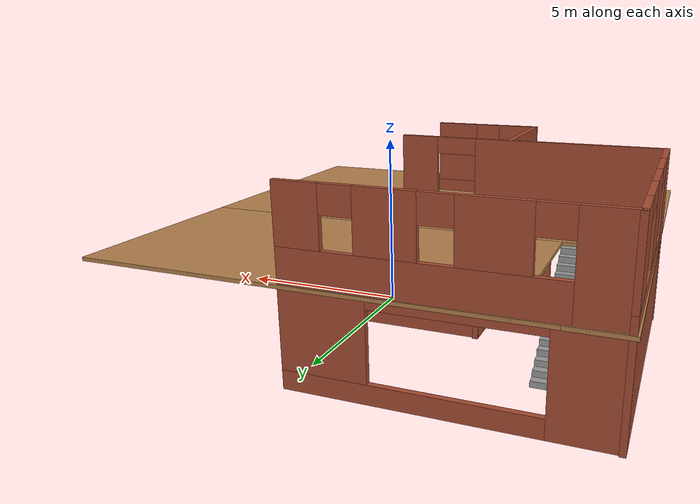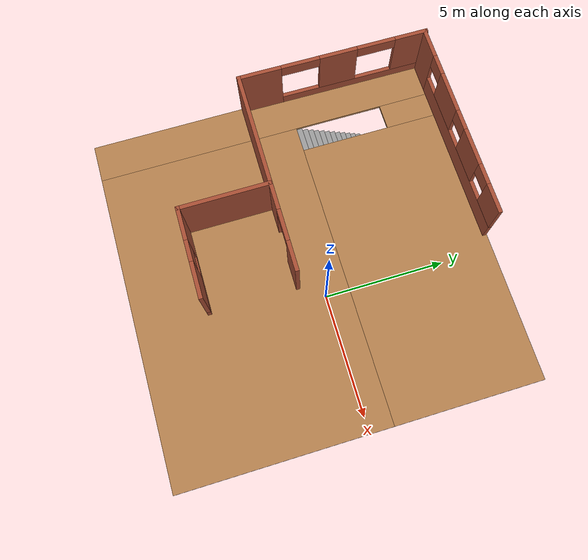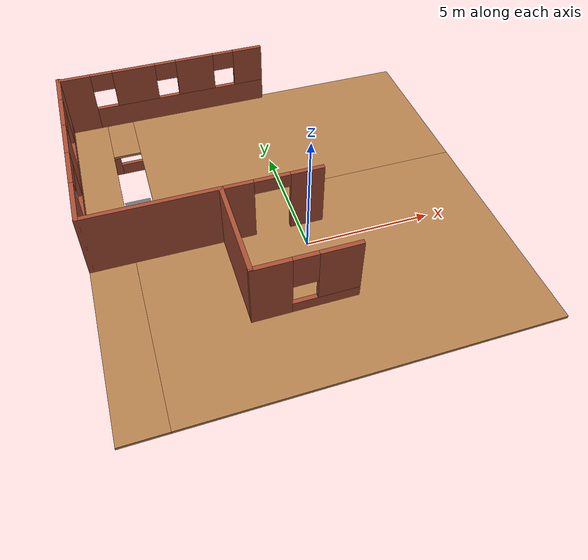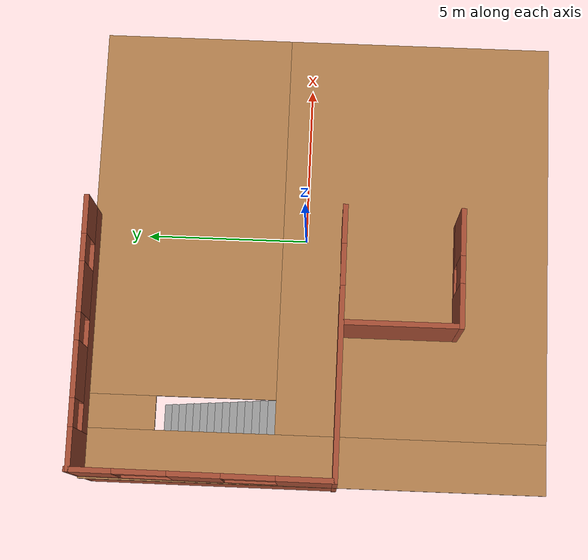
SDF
<sdf version="1.6">
 <model name="HouseTwoLevels">
  <pose>-1.03567 -0.470569 0 0 -0 0</pose>
  <link name="Floor_0">
   <pose>0 8.2e-05 2.5 0 -0 0</pose>
   <visual name="Floor_0_Visual_0">
    <pose>-6.0357 0 0.05 0 -0 0</pose>
    <geometry><box><size>1.47202 13.5434 0.1</size></box></geometry>
    <material>
     <script><uri>file://media/materials/scripts/gazebo.material</uri><name>Gazebo/Wood</name></script>
     <ambient>1 1 1 1</ambient>
    </material>
   </visual>
   <collision name="Floor_0_Collision_0">
    <geometry><box><size>1.47202 13.5434 0.1</size></box></geometry>
    <pose>-6.0357 0 0.05 0 -0 0</pose>
   </collision>
   <visual name="Floor_0_Visual_1">
    <pose>0.736013 -2.82095 0.05 0 -0 0</pose>
    <geometry><box><size>12.0714 7.90153 0.1</size></box></geometry>
    <material>
     <script><uri>file://media/materials/scripts/gazebo.material</uri><name>Gazebo/Wood</name></script>
     <ambient>1 1 1 1</ambient>
    </material>
   </visual>
   <collision name="Floor_0_Collision_1">
    <geometry><box><size>12.0714 7.90153 0.1</size></box></geometry>
    <pose>0.736013 -2.82095 0.05 0 -0 0</pose>
   </collision>
   <visual name="Floor_0_Visual_2">
    <pose>1.23601 3.95076 0.05 0 -0 0</pose>
    <geometry><box><size>11.0714 5.6419 0.1</size></box></geometry>
    <material>
     <script><uri>file://media/materials/scripts/gazebo.material</uri><name>Gazebo/Wood</name></script>
     <ambient>1 1 1 1</ambient>
    </material>
   </visual>
   <collision name="Floor_0_Collision_2">
    <geometry><box><size>11.0714 5.6419 0.1</size></box></geometry>
    <pose>1.23601 3.95076 0.05 0 -0 0</pose>
   </collision>
   <visual name="Floor_0_Visual_3">
    <pose>-4.79969 5.70076 0.05 0 -0 0</pose>
    <geometry><box><size>1 2.1419 0.1</size></box></geometry>
    <material>
     <script><uri>file://media/materials/scripts/gazebo.material</uri><name>Gazebo/Wood</name></script>
     <ambient>1 1 1 1</ambient>
    </material>
   </visual>
   <collision name="Floor_0_Collision_3">
    <geometry><box><size>1 2.1419 0.1</size></box></geometry>
    <pose>-4.79969 5.70076 0.05 0 -0 0</pose>
   </collision>
  </link>
  <link name="Stairs_0">
   <visual name="Stairs_0_Visual_0">
    <pose>-4.79969 4.51323 0.083333 0 -0 0</pose>
    <geometry><box><size>1 0.233333 0.166667</size></box></geometry>
    <material>
     <script><uri>file://media/materials/scripts/gazebo.material</uri><name>Gazebo/Grey</name></script>
     <ambient>1 1 1 1</ambient>
    </material>
   </visual>
   <collision name="Stairs_0_Collision_0">
    <geometry><box><size>1 0.233333 0.166667</size></box></geometry>
    <pose>-4.79969 4.51323 0.083333 0 -0 0</pose>
   </collision>
   <visual name="Stairs_0_Visual_1">
    <pose>-4.79969 4.2799 0.25 0 -0 0</pose>
    <geometry><box><size>1 0.233333 0.166667</size></box></geometry>
    <material>
     <script><uri>file://media/materials/scripts/gazebo.material</uri><name>Gazebo/Grey</name></script>
     <ambient>1 1 1 1</ambient>
    </material>
   </visual>
   <collision name="Stairs_0_Collision_1">
    <geometry><box><size>1 0.233333 0.166667</size></box></geometry>
    <pose>-4.79969 4.2799 0.25 0 -0 0</pose>
   </collision>
   <visual name="Stairs_0_Visual_2">
    <pose>-4.79969 4.04656 0.416667 0 -0 0</pose>
    <geometry><box><size>1 0.233333 0.166667</size></box></geometry>
    <material>
     <script><uri>file://media/materials/scripts/gazebo.material</uri><name>Gazebo/Grey</name></script>
     <ambient>1 1 1 1</ambient>
    </material>
   </visual>
   <collision name="Stairs_0_Collision_2">
    <geometry><box><size>1 0.233333 0.166667</size></box></geometry>
    <pose>-4.79969 4.04656 0.416667 0 -0 0</pose>
   </collision>
   <visual name="Stairs_0_Visual_3">
    <pose>-4.79969 3.81323 0.583333 0 -0 0</pose>
    <geometry><box><size>1 0.233333 0.166667</size></box></geometry>
    <material>
     <script><uri>file://media/materials/scripts/gazebo.material</uri><name>Gazebo/Grey</name></script>
     <ambient>1 1 1 1</ambient>
    </material>
   </visual>
   <collision name="Stairs_0_Collision_3">
    <geometry><box><size>1 0.233333 0.166667</size></box></geometry>
    <pose>-4.79969 3.81323 0.583333 0 -0 0</pose>
   </collision>
   <visual name="Stairs_0_Visual_4">
    <pose>-4.79969 3.5799 0.75 0 -0 0</pose>
    <geometry><box><size>1 0.233333 0.166667</size></box></geometry>
    <material>
     <script><uri>file://media/materials/scripts/gazebo.material</uri><name>Gazebo/Grey</name></script>
     <ambient>1 1 1 1</ambient>
    </material>
   </visual>
   <collision name="Stairs_0_Collision_4">
    <geometry><box><size>1 0.233333 0.166667</size></box></geometry>
    <pose>-4.79969 3.5799 0.75 0 -0 0</pose>
   </collision>
   <visual name="Stairs_0_Visual_5">
    <pose>-4.79969 3.34656 0.916667 0 -0 0</pose>
    <geometry><box><size>1 0.233333 0.166667</size></box></geometry>
    <material>
     <script><uri>file://media/materials/scripts/gazebo.material</uri><name>Gazebo/Grey</name></script>
     <ambient>1 1 1 1</ambient>
    </material>
   </visual>
   <collision name="Stairs_0_Collision_5">
    <geometry><box><size>1 0.233333 0.166667</size></box></geometry>
    <pose>-4.79969 3.34656 0.916667 0 -0 0</pose>
   </collision>
   <visual name="Stairs_0_Visual_6">
    <pose>-4.79969 3.11323 1.08333 0 -0 0</pose>
    <geometry><box><size>1 0.233333 0.166667</size></box></geometry>
    <material>
     <script><uri>file://media/materials/scripts/gazebo.material</uri><name>Gazebo/Grey</name></script>
     <ambient>1 1 1 1</ambient>
    </material>
   </visual>
   <collision name="Stairs_0_Collision_6">
    <geometry><box><size>1 0.233333 0.166667</size></box></geometry>
    <pose>-4.79969 3.11323 1.08333 0 -0 0</pose>
   </collision>
   <visual name="Stairs_0_Visual_7">
    <pose>-4.79969 2.87989 1.25 0 -0 0</pose>
    <geometry><box><size>1 0.233333 0.166667</size></box></geometry>
    <material>
     <script><uri>file://media/materials/scripts/gazebo.material</uri><name>Gazebo/Grey</name></script>
     <ambient>1 1 1 1</ambient>
    </material>
   </visual>
   <collision name="Stairs_0_Collision_7">
    <geometry><box><size>1 0.233333 0.166667</size></box></geometry>
    <pose>-4.79969 2.87989 1.25 0 -0 0</pose>
   </collision>
   <visual name="Stairs_0_Visual_8">
    <pose>-4.79969 2.64656 1.41667 0 -0 0</pose>
    <geometry><box><size>1 0.233333 0.166667</size></box></geometry>
    <material>
     <script><uri>file://media/materials/scripts/gazebo.material</uri><name>Gazebo/Grey</name></script>
     <ambient>1 1 1 1</ambient>
    </material>
   </visual>
   <collision name="Stairs_0_Collision_8">
    <geometry><box><size>1 0.233333 0.166667</size></box></geometry>
    <pose>-4.79969 2.64656 1.41667 0 -0 0</pose>
   </collision>
   <visual name="Stairs_0_Visual_9">
    <pose>-4.79969 2.41323 1.58333 0 -0 0</pose>
    <geometry><box><size>1 0.233333 0.166667</size></box></geometry>
    <material>
     <script><uri>file://media/materials/scripts/gazebo.material</uri><name>Gazebo/Grey</name></script>
     <ambient>1 1 1 1</ambient>
    </material>
   </visual>
   <collision name="Stairs_0_Collision_9">
    <geometry><box><size>1 0.233333 0.166667</size></box></geometry>
    <pose>-4.79969 2.41323 1.58333 0 -0 0</pose>
   </collision>
   <visual name="Stairs_0_Visual_10">
    <pose>-4.79969 2.1799 1.75 0 -0 0</pose>
    <geometry><box><size>1 0.233333 0.166667</size></box></geometry>
    <material>
     <script><uri>file://media/materials/scripts/gazebo.material</uri><name>Gazebo/Grey</name></script>
     <ambient>1 1 1 1</ambient>
    </material>
   </visual>
   <collision name="Stairs_0_Collision_10">
    <geometry><box><size>1 0.233333 0.166667</size></box></geometry>
    <pose>-4.79969 2.1799 1.75 0 -0 0</pose>
   </collision>
   <visual name="Stairs_0_Visual_11">
    <pose>-4.79969 1.94656 1.91667 0 -0 0</pose>
    <geometry><box><size>1 0.233333 0.166667</size></box></geometry>
    <material>
     <script><uri>file://media/materials/scripts/gazebo.material</uri><name>Gazebo/Grey</name></script>
     <ambient>1 1 1 1</ambient>
    </material>
   </visual>
   <collision name="Stairs_0_Collision_11">
    <geometry><box><size>1 0.233333 0.166667</size></box></geometry>
    <pose>-4.79969 1.94656 1.91667 0 -0 0</pose>
   </collision>
   <visual name="Stairs_0_Visual_12">
    <pose>-4.79969 1.71323 2.08333 0 -0 0</pose>
    <geometry><box><size>1 0.233333 0.166667</size></box></geometry>
    <material>
     <script><uri>file://media/materials/scripts/gazebo.material</uri><name>Gazebo/Grey</name></script>
     <ambient>1 1 1 1</ambient>
    </material>
   </visual>
   <collision name="Stairs_0_Collision_12">
    <geometry><box><size>1 0.233333 0.166667</size></box></geometry>
    <pose>-4.79969 1.71323 2.08333 0 -0 0</pose>
   </collision>
   <visual name="Stairs_0_Visual_13">
    <pose>-4.79969 1.47989 2.25 0 -0 0</pose>
    <geometry><box><size>1 0.233333 0.166667</size></box></geometry>
    <material>
     <script><uri>file://media/materials/scripts/gazebo.material</uri><name>Gazebo/Grey</name></script>
     <ambient>1 1 1 1</ambient>
    </material>
   </visual>
   <collision name="Stairs_0_Collision_13">
    <geometry><box><size>1 0.233333 0.166667</size></box></geometry>
    <pose>-4.79969 1.47989 2.25 0 -0 0</pose>
   </collision>
   <visual name="Stairs_0_Visual_14">
    <pose>-4.79969 1.24656 2.41667 0 -0 0</pose>
    <geometry><box><size>1 0.233333 0.166667</size></box></geometry>
    <material>
     <script><uri>file://media/materials/scripts/gazebo.material</uri><name>Gazebo/Grey</name></script>
     <ambient>1 1 1 1</ambient>
    </material>
   </visual>
   <collision name="Stairs_0_Collision_14">
    <geometry><box><size>1 0.233333 0.166667</size></box></geometry>
    <pose>-4.79969 1.24656 2.41667 0 -0 0</pose>
   </collision>
  </link>
  <link name="Wall_1">
   <pose>-2.82202 6.66175 0 0 -0 0.003021</pose>
   <visual name="Wall_1_Visual_0">
    <pose>-3.08451 0 1.25 0 -0 0</pose>
    <geometry><box><size>1.63724 0.15 2.5</size></box></geometry>
    <material>
     <script><uri>file://media/materials/scripts/gazebo.material</uri><name>Gazebo/Bricks</name></script>
     <ambient>1 1 1 1</ambient>
    </material>
   </visual>
   <collision name="Wall_1_Collision_0">
    <geometry><box><size>1.63724 0.15 2.5</size></box></geometry>
    <pose>-3.08451 0 1.25 0 -0 0</pose>
   </collision>
   <visual name="Wall_1_Visual_1">
    <pose>0.818619 0 0.25 0 -0 0</pose>
    <geometry><box><size>6.16903 0.15 0.5</size></box></geometry>
    <material>
     <script><uri>file://media/materials/scripts/gazebo.material</uri><name>Gazebo/Bricks</name></script>
     <ambient>1 1 1 1</ambient>
    </material>
   </visual>
   <collision name="Wall_1_Collision_1">
    <geometry><box><size>6.16903 0.15 0.5</size></box></geometry>
    <pose>0.818619 0 0.25 0 -0 0</pose>
   </collision>
   <visual name="Wall_1_Visual_2">
    <pose>2.81862 0 1.5 0 -0 0</pose>
    <geometry><box><size>2.16903 0.15 2</size></box></geometry>
    <material>
     <script><uri>file://media/materials/scripts/gazebo.material</uri><name>Gazebo/Bricks</name></script>
     <ambient>1 1 1 1</ambient>
    </material>
   </visual>
   <collision name="Wall_1_Collision_2">
    <geometry><box><size>2.16903 0.15 2</size></box></geometry>
    <pose>2.81862 0 1.5 0 -0 0</pose>
   </collision>
   <visual name="Wall_1_Visual_3">
    <pose>-0.265896 0 2.4 0 -0 0</pose>
    <geometry><box><size>4 0.15 0.2</size></box></geometry>
    <material>
     <script><uri>file://media/materials/scripts/gazebo.material</uri><name>Gazebo/Bricks</name></script>
     <ambient>1 1 1 1</ambient>
    </material>
   </visual>
   <collision name="Wall_1_Collision_3">
    <geometry><box><size>4 0.15 0.2</size></box></geometry>
    <pose>-0.265896 0 2.4 0 -0 0</pose>
   </collision>
  </link>
  <link name="Wall_13">
   <pose>-2.31315 0.867533 0 0 -0 1.56333</pose>
   <visual name="Wall_13_Visual_0">
    <pose>-1.17001 0 1.25 0 -0 0</pose>
    <geometry><box><size>0.909576 0.15 2.5</size></box></geometry>
    <material>
     <script><uri>file://media/materials/scripts/gazebo.material</uri><name>Gazebo/Bricks</name></script>
     <ambient>1 1 1 1</ambient>
    </material>
   </visual>
   <collision name="Wall_13_Collision_0">
    <geometry><box><size>0.909576 0.15 2.5</size></box></geometry>
    <pose>-1.17001 0 1.25 0 -0 0</pose>
   </collision>
   <visual name="Wall_13_Visual_1">
    <pose>1.05479 0 1.25 0 -0 0</pose>
    <geometry><box><size>1.14001 0.15 2.5</size></box></geometry>
    <material>
     <script><uri>file://media/materials/scripts/gazebo.material</uri><name>Gazebo/Bricks</name></script>
     <ambient>1 1 1 1</ambient>
    </material>
   </visual>
   <collision name="Wall_13_Collision_1">
    <geometry><box><size>1.14001 0.15 2.5</size></box></geometry>
    <pose>1.05479 0 1.25 0 -0 0</pose>
   </collision>
   <visual name="Wall_13_Visual_2">
    <pose>-0.115218 0 2.25 0 -0 0</pose>
    <geometry><box><size>1.2 0.15 0.5</size></box></geometry>
    <material>
     <script><uri>file://media/materials/scripts/gazebo.material</uri><name>Gazebo/Bricks</name></script>
     <ambient>1 1 1 1</ambient>
    </material>
   </visual>
   <collision name="Wall_13_Collision_2">
    <geometry><box><size>1.2 0.15 0.5</size></box></geometry>
    <pose>-0.115218 0 2.25 0 -0 0</pose>
   </collision>
  </link>
  <link name="Wall_15">
   <collision name="Wall_15_Collision">
    <geometry><box><size>3.45768 0.15 2.5</size></box></geometry>
    <pose>0 0 1.25 0 -0 0</pose>
   </collision>
   <visual name="Wall_15_Visual">
    <pose>0 0 1.25 0 -0 0</pose>
    <geometry><box><size>3.45768 0.15 2.5</size></box></geometry>
    <material>
     <script><uri>file://media/materials/scripts/gazebo.material</uri><name>Gazebo/Bricks</name></script>
     <ambient>1 1 1 1</ambient>
    </material>
   </visual>
   <pose>-0.647741 2.34789 0 0 -0 0</pose>
  </link>
  <link name="Wall_17">
   <collision name="Wall_17_Collision">
    <geometry><box><size>3.48113 0.15 2.5</size></box></geometry>
    <pose>0 0 1.25 0 -0 0</pose>
   </collision>
   <visual name="Wall_17_Visual">
    <pose>0 0 1.25 0 -0 0</pose>
    <geometry><box><size>3.48113 0.15 2.5</size></box></geometry>
    <material>
     <script><uri>file://media/materials/scripts/gazebo.material</uri><name>Gazebo/Bricks</name></script>
     <ambient>1 1 1 1</ambient>
    </material>
   </visual>
   <pose>-2.30158 -2.37075 0 0 0 -1.5708</pose>
  </link>
  <link name="Wall_18">
   <pose>-0.647741 -4.03616 0 0 -0 0</pose>
   <visual name="Wall_18_Visual_0">
    <pose>-1.33772 0 1.25 0 -0 0</pose>
    <geometry><box><size>0.782228 0.15 2.5</size></box></geometry>
    <material>
     <script><uri>file://media/materials/scripts/gazebo.material</uri><name>Gazebo/Bricks</name></script>
     <ambient>1 1 1 1</ambient>
    </material>
   </visual>
   <collision name="Wall_18_Collision_0">
    <geometry><box><size>0.782228 0.15 2.5</size></box></geometry>
    <pose>-1.33772 0 1.25 0 -0 0</pose>
   </collision>
   <visual name="Wall_18_Visual_1">
    <pose>1.14111 0 1.25 0 -0 0</pose>
    <geometry><box><size>1.17545 0.15 2.5</size></box></geometry>
    <material>
     <script><uri>file://media/materials/scripts/gazebo.material</uri><name>Gazebo/Bricks</name></script>
     <ambient>1 1 1 1</ambient>
    </material>
   </visual>
   <collision name="Wall_18_Collision_1">
    <geometry><box><size>1.17545 0.15 2.5</size></box></geometry>
    <pose>1.14111 0 1.25 0 -0 0</pose>
   </collision>
   <visual name="Wall_18_Visual_2">
    <pose>-0.19661 0 2.25 0 -0 0</pose>
    <geometry><box><size>1.5 0.15 0.5</size></box></geometry>
    <material>
     <script><uri>file://media/materials/scripts/gazebo.material</uri><name>Gazebo/Bricks</name></script>
     <ambient>1 1 1 1</ambient>
    </material>
   </visual>
   <collision name="Wall_18_Collision_2">
    <geometry><box><size>1.5 0.15 0.5</size></box></geometry>
    <pose>-0.19661 0 2.25 0 -0 0</pose>
   </collision>
  </link>
  <link name="Wall_20">
   <pose>-2.82202 6.66175 2.5 0 -0 0.003021</pose>
   <visual name="Wall_20_Visual_0">
    <pose>-3.29062 0 1.25 0 -0 0</pose>
    <geometry><box><size>1.22502 0.15 2.5</size></box></geometry>
    <material>
     <script><uri>file://media/materials/scripts/gazebo.material</uri><name>Gazebo/Bricks</name></script>
     <ambient>1 1 1 1</ambient>
    </material>
   </visual>
   <collision name="Wall_20_Collision_0">
    <geometry><box><size>1.22502 0.15 2.5</size></box></geometry>
    <pose>-3.29062 0 1.25 0 -0 0</pose>
   </collision>
   <visual name="Wall_20_Visual_1">
    <pose>0.612511 0 0.5 0 -0 0</pose>
    <geometry><box><size>6.58124 0.15 1</size></box></geometry>
    <material>
     <script><uri>file://media/materials/scripts/gazebo.material</uri><name>Gazebo/Bricks</name></script>
     <ambient>1 1 1 1</ambient>
    </material>
   </visual>
   <collision name="Wall_20_Collision_1">
    <geometry><box><size>6.58124 0.15 1</size></box></geometry>
    <pose>0.612511 0 0.5 0 -0 0</pose>
   </collision>
   <visual name="Wall_20_Visual_2">
    <pose>-1.0755 0 1.75 0 -0 0</pose>
    <geometry><box><size>1.60522 0.15 1.5</size></box></geometry>
    <material>
     <script><uri>file://media/materials/scripts/gazebo.material</uri><name>Gazebo/Bricks</name></script>
     <ambient>1 1 1 1</ambient>
    </material>
   </visual>
   <collision name="Wall_20_Collision_2">
    <geometry><box><size>1.60522 0.15 1.5</size></box></geometry>
    <pose>-1.0755 0 1.75 0 -0 0</pose>
   </collision>
   <visual name="Wall_20_Visual_3">
    <pose>1.24922 0 1.75 0 -0 0</pose>
    <geometry><box><size>1.44422 0.15 1.5</size></box></geometry>
    <material>
     <script><uri>file://media/materials/scripts/gazebo.material</uri><name>Gazebo/Bricks</name></script>
     <ambient>1 1 1 1</ambient>
    </material>
   </visual>
   <collision name="Wall_20_Collision_3">
    <geometry><box><size>1.44422 0.15 1.5</size></box></geometry>
    <pose>1.24922 0 1.75 0 -0 0</pose>
   </collision>
   <visual name="Wall_20_Visual_4">
    <pose>3.33723 0 1.75 0 -0 0</pose>
    <geometry><box><size>1.1318 0.15 1.5</size></box></geometry>
    <material>
     <script><uri>file://media/materials/scripts/gazebo.material</uri><name>Gazebo/Bricks</name></script>
     <ambient>1 1 1 1</ambient>
    </material>
   </visual>
   <collision name="Wall_20_Collision_4">
    <geometry><box><size>1.1318 0.15 1.5</size></box></geometry>
    <pose>3.33723 0 1.75 0 -0 0</pose>
   </collision>
   <visual name="Wall_20_Visual_5">
    <pose>-2.27811 0 2.15 0 -0 0</pose>
    <geometry><box><size>0.8 0.15 0.7</size></box></geometry>
    <material>
     <script><uri>file://media/materials/scripts/gazebo.material</uri><name>Gazebo/Bricks</name></script>
     <ambient>1 1 1 1</ambient>
    </material>
   </visual>
   <collision name="Wall_20_Collision_5">
    <geometry><box><size>0.8 0.15 0.7</size></box></geometry>
    <pose>-2.27811 0 2.15 0 -0 0</pose>
   </collision>
   <visual name="Wall_20_Visual_6">
    <pose>0.127113 0 2.15 0 -0 0</pose>
    <geometry><box><size>0.8 0.15 0.7</size></box></geometry>
    <material>
     <script><uri>file://media/materials/scripts/gazebo.material</uri><name>Gazebo/Bricks</name></script>
     <ambient>1 1 1 1</ambient>
    </material>
   </visual>
   <collision name="Wall_20_Collision_6">
    <geometry><box><size>0.8 0.15 0.7</size></box></geometry>
    <pose>0.127113 0 2.15 0 -0 0</pose>
   </collision>
   <visual name="Wall_20_Visual_7">
    <pose>2.37133 0 2.15 0 -0 0</pose>
    <geometry><box><size>0.8 0.15 0.7</size></box></geometry>
    <material>
     <script><uri>file://media/materials/scripts/gazebo.material</uri><name>Gazebo/Bricks</name></script>
     <ambient>1 1 1 1</ambient>
    </material>
   </visual>
   <collision name="Wall_20_Collision_7">
    <geometry><box><size>0.8 0.15 0.7</size></box></geometry>
    <pose>2.37133 0 2.15 0 -0 0</pose>
   </collision>
  </link>
  <link name="Wall_22">
   <pose>-2.84533 -0.670931 2.5 0 -0 3.13861</pose>
   <visual name="Wall_22_Visual_0">
    <pose>-3.35596 0 1.25 0 -0 0</pose>
    <geometry><box><size>1.14061 0.15 2.5</size></box></geometry>
    <material>
     <script><uri>file://media/materials/scripts/gazebo.material</uri><name>Gazebo/Bricks</name></script>
     <ambient>1 1 1 1</ambient>
    </material>
   </visual>
   <collision name="Wall_22_Collision_0">
    <geometry><box><size>1.14061 0.15 2.5</size></box></geometry>
    <pose>-3.35596 0 1.25 0 -0 0</pose>
   </collision>
   <visual name="Wall_22_Visual_1">
    <pose>1.1703 0 1.25 0 -0 0</pose>
    <geometry><box><size>5.51192 0.15 2.5</size></box></geometry>
    <material>
     <script><uri>file://media/materials/scripts/gazebo.material</uri><name>Gazebo/Bricks</name></script>
     <ambient>1 1 1 1</ambient>
    </material>
   </visual>
   <collision name="Wall_22_Collision_1">
    <geometry><box><size>5.51192 0.15 2.5</size></box></geometry>
    <pose>1.1703 0 1.25 0 -0 0</pose>
   </collision>
   <visual name="Wall_22_Visual_2">
    <pose>-2.18566 0 2.25 0 -0 0</pose>
    <geometry><box><size>1.2 0.15 0.5</size></box></geometry>
    <material>
     <script><uri>file://media/materials/scripts/gazebo.material</uri><name>Gazebo/Bricks</name></script>
     <ambient>1 1 1 1</ambient>
    </material>
   </visual>
   <collision name="Wall_22_Collision_2">
    <geometry><box><size>1.2 0.15 0.5</size></box></geometry>
    <pose>-2.18566 0 2.25 0 -0 0</pose>
   </collision>
  </link>
  <link name="Wall_23">
   <pose>-6.67323 3.01851 2.5 0 -0 1.56452</pose>
   <visual name="Wall_23_Visual_0">
    <pose>-2.89885 0 1.25 0 -0 0</pose>
    <geometry><box><size>1.70787 0.15 2.5</size></box></geometry>
    <material>
     <script><uri>file://media/materials/scripts/gazebo.material</uri><name>Gazebo/Bricks</name></script>
     <ambient>1 1 1 1</ambient>
    </material>
   </visual>
   <collision name="Wall_23_Collision_0">
    <geometry><box><size>1.70787 0.15 2.5</size></box></geometry>
    <pose>-2.89885 0 1.25 0 -0 0</pose>
   </collision>
   <visual name="Wall_23_Visual_1">
    <pose>0.853935 0 0.25 0 -0 0</pose>
    <geometry><box><size>5.7977 0.15 0.5</size></box></geometry>
    <material>
     <script><uri>file://media/materials/scripts/gazebo.material</uri><name>Gazebo/Bricks</name></script>
     <ambient>1 1 1 1</ambient>
    </material>
   </visual>
   <collision name="Wall_23_Collision_1">
    <geometry><box><size>5.7977 0.15 0.5</size></box></geometry>
    <pose>0.853935 0 0.25 0 -0 0</pose>
   </collision>
   <visual name="Wall_23_Visual_2">
    <pose>0.196694 0 1.5 0 -0 0</pose>
    <geometry><box><size>1.48322 0.15 2</size></box></geometry>
    <material>
     <script><uri>file://media/materials/scripts/gazebo.material</uri><name>Gazebo/Bricks</name></script>
     <ambient>1 1 1 1</ambient>
    </material>
   </visual>
   <collision name="Wall_23_Collision_2">
    <geometry><box><size>1.48322 0.15 2</size></box></geometry>
    <pose>0.196694 0 1.5 0 -0 0</pose>
   </collision>
   <visual name="Wall_23_Visual_3">
    <pose>3.09554 0 1.5 0 -0 0</pose>
    <geometry><box><size>1.31448 0.15 2</size></box></geometry>
    <material>
     <script><uri>file://media/materials/scripts/gazebo.material</uri><name>Gazebo/Bricks</name></script>
     <ambient>1 1 1 1</ambient>
    </material>
   </visual>
   <collision name="Wall_23_Collision_3">
    <geometry><box><size>1.31448 0.15 2</size></box></geometry>
    <pose>3.09554 0 1.5 0 -0 0</pose>
   </collision>
   <visual name="Wall_23_Visual_4">
    <pose>-1.29491 0 2.25 0 -0 0</pose>
    <geometry><box><size>1.5 0.15 0.5</size></box></geometry>
    <material>
     <script><uri>file://media/materials/scripts/gazebo.material</uri><name>Gazebo/Bricks</name></script>
     <ambient>1 1 1 1</ambient>
    </material>
   </visual>
   <collision name="Wall_23_Collision_4">
    <geometry><box><size>1.5 0.15 0.5</size></box></geometry>
    <pose>-1.29491 0 2.25 0 -0 0</pose>
   </collision>
   <visual name="Wall_23_Visual_5">
    <pose>1.6883 0 2.25 0 -0 0</pose>
    <geometry><box><size>1.5 0.15 0.5</size></box></geometry>
    <material>
     <script><uri>file://media/materials/scripts/gazebo.material</uri><name>Gazebo/Bricks</name></script>
     <ambient>1 1 1 1</ambient>
    </material>
   </visual>
   <collision name="Wall_23_Collision_5">
    <geometry><box><size>1.5 0.15 0.5</size></box></geometry>
    <pose>1.6883 0 2.25 0 -0 0</pose>
   </collision>
  </link>
  <link name="Wall_3">
   <pose>-2.84515 -0.670653 0 0 -0 3.13859</pose>
   <visual name="Wall_3_Visual_0">
    <pose>-3.25759 0 1.25 0 -0 0</pose>
    <geometry><box><size>1.33735 0.15 2.5</size></box></geometry>
    <material>
     <script><uri>file://media/materials/scripts/gazebo.material</uri><name>Gazebo/Bricks</name></script>
     <ambient>1 1 1 1</ambient>
    </material>
   </visual>
   <collision name="Wall_3_Collision_0">
    <geometry><box><size>1.33735 0.15 2.5</size></box></geometry>
    <pose>-3.25759 0 1.25 0 -0 0</pose>
   </collision>
   <visual name="Wall_3_Visual_1">
    <pose>-0.125766 0 1.25 0 -0 0</pose>
    <geometry><box><size>1.92629 0.15 2.5</size></box></geometry>
    <material>
     <script><uri>file://media/materials/scripts/gazebo.material</uri><name>Gazebo/Bricks</name></script>
     <ambient>1 1 1 1</ambient>
    </material>
   </visual>
   <collision name="Wall_3_Collision_1">
    <geometry><box><size>1.92629 0.15 2.5</size></box></geometry>
    <pose>-0.125766 0 1.25 0 -0 0</pose>
   </collision>
   <visual name="Wall_3_Visual_2">
    <pose>2.38182 0 0.25 0 -0 0</pose>
    <geometry><box><size>3.08889 0.15 0.5</size></box></geometry>
    <material>
     <script><uri>file://media/materials/scripts/gazebo.material</uri><name>Gazebo/Bricks</name></script>
     <ambient>1 1 1 1</ambient>
    </material>
   </visual>
   <collision name="Wall_3_Collision_2">
    <geometry><box><size>3.08889 0.15 0.5</size></box></geometry>
    <pose>2.38182 0 0.25 0 -0 0</pose>
   </collision>
   <visual name="Wall_3_Visual_3">
    <pose>1.79275 0 1.5 0 -0 0</pose>
    <geometry><box><size>0.31075 0.15 2</size></box></geometry>
    <material>
     <script><uri>file://media/materials/scripts/gazebo.material</uri><name>Gazebo/Bricks</name></script>
     <ambient>1 1 1 1</ambient>
    </material>
   </visual>
   <collision name="Wall_3_Collision_3">
    <geometry><box><size>0.31075 0.15 2</size></box></geometry>
    <pose>1.79275 0 1.5 0 -0 0</pose>
   </collision>
   <visual name="Wall_3_Visual_4">
    <pose>3.3372 0 1.5 0 -0 0</pose>
    <geometry><box><size>1.17814 0.15 2</size></box></geometry>
    <material>
     <script><uri>file://media/materials/scripts/gazebo.material</uri><name>Gazebo/Bricks</name></script>
     <ambient>1 1 1 1</ambient>
    </material>
   </visual>
   <collision name="Wall_3_Collision_4">
    <geometry><box><size>1.17814 0.15 2</size></box></geometry>
    <pose>3.3372 0 1.5 0 -0 0</pose>
   </collision>
   <visual name="Wall_3_Visual_5">
    <pose>-1.83891 0 2.25 0 -0 0</pose>
    <geometry><box><size>1.5 0.15 0.5</size></box></geometry>
    <material>
     <script><uri>file://media/materials/scripts/gazebo.material</uri><name>Gazebo/Bricks</name></script>
     <ambient>1 1 1 1</ambient>
    </material>
   </visual>
   <collision name="Wall_3_Collision_5">
    <geometry><box><size>1.5 0.15 0.5</size></box></geometry>
    <pose>-1.83891 0 2.25 0 -0 0</pose>
   </collision>
   <visual name="Wall_3_Visual_6">
    <pose>1.23738 0 2.25 0 -0 0</pose>
    <geometry><box><size>0.8 0.15 0.5</size></box></geometry>
    <material>
     <script><uri>file://media/materials/scripts/gazebo.material</uri><name>Gazebo/Bricks</name></script>
     <ambient>1 1 1 1</ambient>
    </material>
   </visual>
   <collision name="Wall_3_Collision_6">
    <geometry><box><size>0.8 0.15 0.5</size></box></geometry>
    <pose>1.23738 0 2.25 0 -0 0</pose>
   </collision>
   <visual name="Wall_3_Visual_7">
    <pose>2.34813 0 2.25 0 -0 0</pose>
    <geometry><box><size>0.8 0.15 0.5</size></box></geometry>
    <material>
     <script><uri>file://media/materials/scripts/gazebo.material</uri><name>Gazebo/Bricks</name></script>
     <ambient>1 1 1 1</ambient>
    </material>
   </visual>
   <collision name="Wall_3_Collision_7">
    <geometry><box><size>0.8 0.15 0.5</size></box></geometry>
    <pose>2.34813 0 2.25 0 -0 0</pose>
   </collision>
  </link>
  <link name="Wall_32">
   <collision name="Wall_32_Collision">
    <geometry><box><size>3.48081 0.15 2.5</size></box></geometry>
    <pose>0 0 1.25 0 -0 0</pose>
   </collision>
   <visual name="Wall_32_Visual">
    <pose>0 0 1.25 0 -0 0</pose>
    <geometry><box><size>3.48081 0.15 2.5</size></box></geometry>
    <material>
     <script><uri>file://media/materials/scripts/gazebo.material</uri><name>Gazebo/Bricks</name></script>
     <ambient>1 1 1 1</ambient>
    </material>
   </visual>
   <pose>-2.30133 -2.37093 2.5 0 0 -1.5708</pose>
  </link>
  <link name="Wall_33">
   <pose>-0.647831 -4.03643 2.5 0 -0 0</pose>
   <visual name="Wall_33_Visual_0">
    <pose>-1.08176 0 1.25 0 -0 0</pose>
    <geometry><box><size>1.29415 0.15 2.5</size></box></geometry>
    <material>
     <script><uri>file://media/materials/scripts/gazebo.material</uri><name>Gazebo/Bricks</name></script>
     <ambient>1 1 1 1</ambient>
    </material>
   </visual>
   <collision name="Wall_33_Collision_0">
    <geometry><box><size>1.29415 0.15 2.5</size></box></geometry>
    <pose>-1.08176 0 1.25 0 -0 0</pose>
   </collision>
   <visual name="Wall_33_Visual_1">
    <pose>0.647075 0 0.25 0 -0 0</pose>
    <geometry><box><size>2.16353 0.15 0.5</size></box></geometry>
    <material>
     <script><uri>file://media/materials/scripts/gazebo.material</uri><name>Gazebo/Bricks</name></script>
     <ambient>1 1 1 1</ambient>
    </material>
   </visual>
   <collision name="Wall_33_Collision_1">
    <geometry><box><size>2.16353 0.15 0.5</size></box></geometry>
    <pose>0.647075 0 0.25 0 -0 0</pose>
   </collision>
   <visual name="Wall_33_Visual_2">
    <pose>1.04707 0 1.5 0 -0 0</pose>
    <geometry><box><size>1.36353 0.15 2</size></box></geometry>
    <material>
     <script><uri>file://media/materials/scripts/gazebo.material</uri><name>Gazebo/Bricks</name></script>
     <ambient>1 1 1 1</ambient>
    </material>
   </visual>
   <collision name="Wall_33_Collision_2">
    <geometry><box><size>1.36353 0.15 2</size></box></geometry>
    <pose>1.04707 0 1.5 0 -0 0</pose>
   </collision>
   <visual name="Wall_33_Visual_3">
    <pose>-0.034689 0 1.9 0 -0 0</pose>
    <geometry><box><size>0.8 0.15 1.2</size></box></geometry>
    <material>
     <script><uri>file://media/materials/scripts/gazebo.material</uri><name>Gazebo/Bricks</name></script>
     <ambient>1 1 1 1</ambient>
    </material>
   </visual>
   <collision name="Wall_33_Collision_3">
    <geometry><box><size>0.8 0.15 1.2</size></box></geometry>
    <pose>-0.034689 0 1.9 0 -0 0</pose>
   </collision>
  </link>
  <link name="Wall_4">
   <collision name="Wall_4_Collision">
    <geometry><box><size>7.50557 0.15 2.5</size></box></geometry>
    <pose>0 0 1.25 0 -0 0</pose>
   </collision>
   <visual name="Wall_4_Visual">
    <pose>0 0 1.25 0 -0 0</pose>
    <geometry><box><size>7.50557 0.15 2.5</size></box></geometry>
    <material>
     <script><uri>file://media/materials/scripts/gazebo.material</uri><name>Gazebo/Bricks</name></script>
     <ambient>1 1 1 1</ambient>
    </material>
   </visual>
   <pose>-6.6617 3.01868 0 0 -0 1.56765</pose>
  </link>
  <static>1</static>
 </model>
</sdf>
